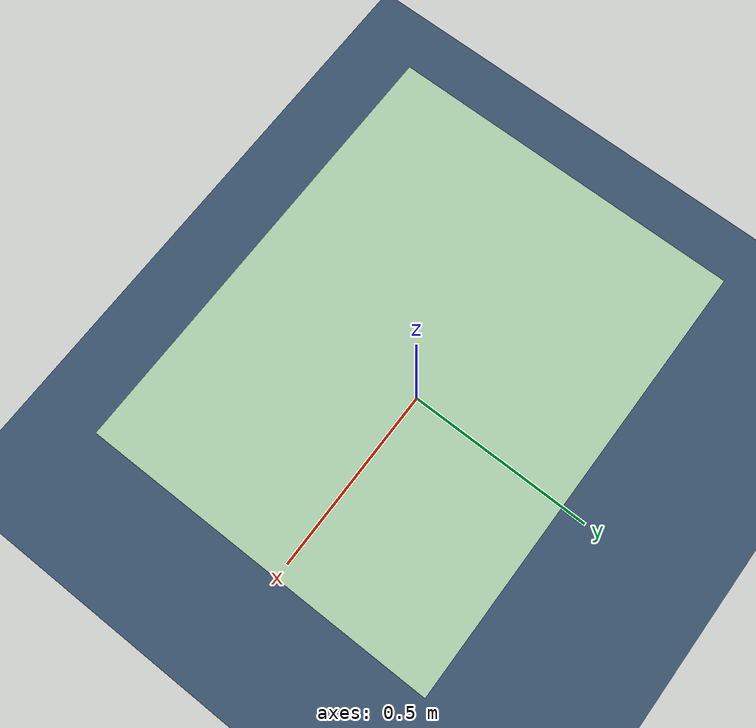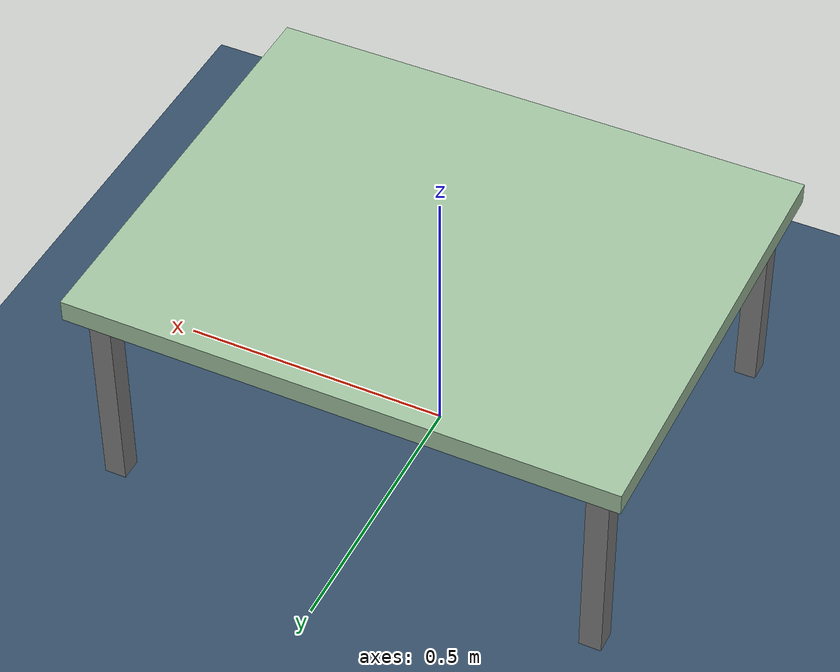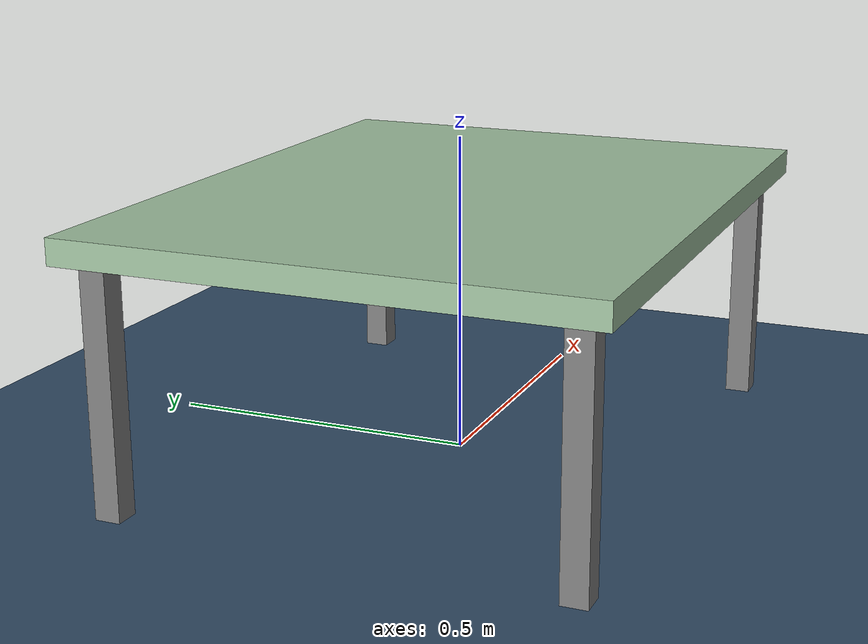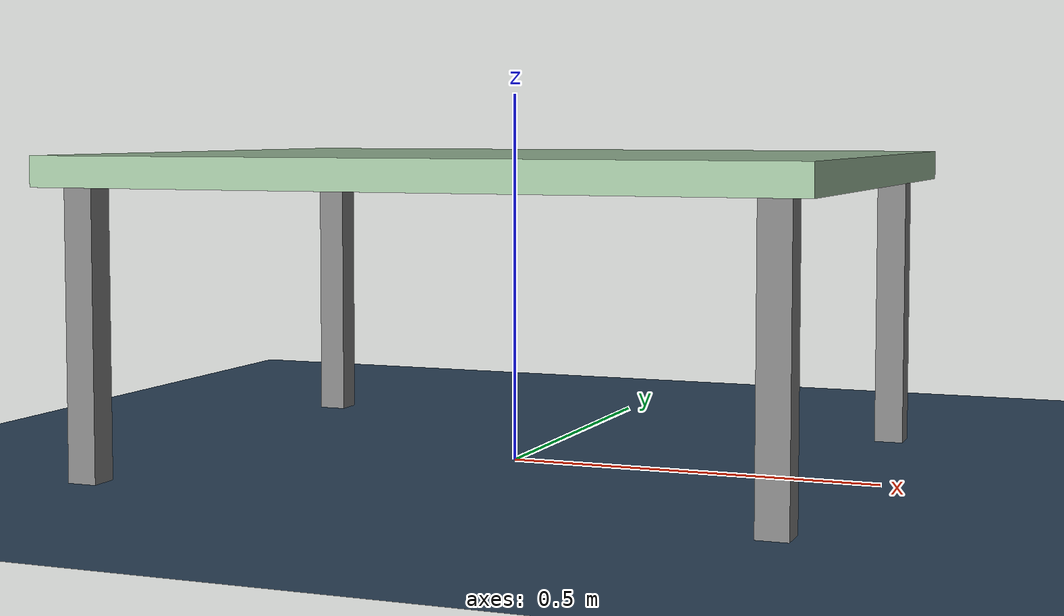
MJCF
<mujoco model="desktop_table_lights">
  <compiler angle="radian" meshdir="./" texturedir="./" />
  <option timestep="0.002" />

  <asset>
    <texture name="groundplane" type="2d" builtin="checker" mark="edge"
             rgb1="0.3 0.4 0.5" rgb2="0.1 0.2 0.3" markrgb="0.8 0.8 0.8"
             width="300" height="300" />
    <material name="groundplane" texture="groundplane" texuniform="true"
              texrepeat="2 2" reflectance="0.2" />
  </asset>

  <worldbody>
    <!-- 地面 -->
    <geom name="floor" type="plane" size="0 0 0.05" material="groundplane" />

    <!-- 顶光 -->
    <light name="top_light" pos="0 0 3" dir="0 0 -1" directional="true"
           diffuse="1 1 1" specular="0.3 0.3 0.3" />

    <!-- 桌面：放在 (0, 0, 0.4) 高度，桌面顶面 z=0.8 -->
    <body name="desk" pos="0 0 0" euler="0 0 0">
      <geom name="desk_top" type="box" size="0.5 0.4 0.02" pos="0 0 0.4"
            rgba="0.63 0.76 0.63 1.0" />
      <geom name="desk_leg1" type="box" size="0.02 0.02 0.2" pos="-0.45 -0.35 0.2"
            rgba="0.5 0.5 0.5 1" />
      <geom name="desk_leg2" type="box" size="0.02 0.02 0.2" pos="0.45 -0.35 0.2"
            rgba="0.5 0.5 0.5 1" />
      <geom name="desk_leg3" type="box" size="0.02 0.02 0.2" pos="-0.45 0.35 0.2"
            rgba="0.5 0.5 0.5 1" />
      <geom name="desk_leg4" type="box" size="0.02 0.02 0.2" pos="0.45 0.35 0.2"
            rgba="0.5 0.5 0.5 1" />
      <inertial pos="0 0 0.2" mass="10" diaginertia="0.1 0.1 0.1" />
    </body>
  </worldbody>
</mujoco>
